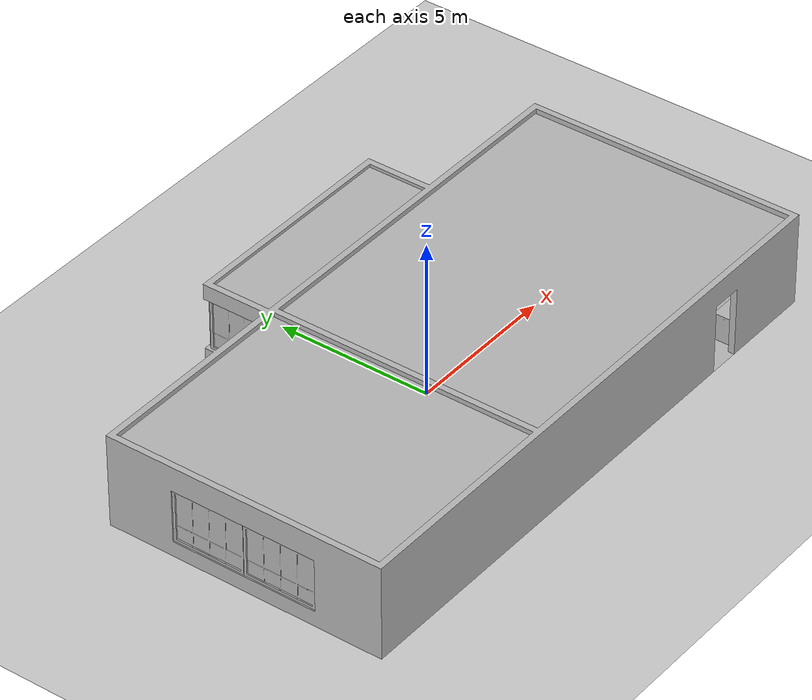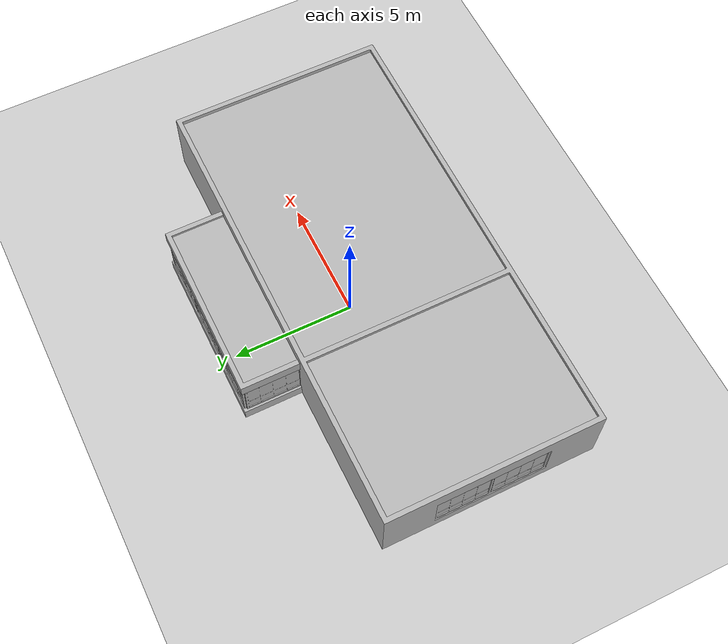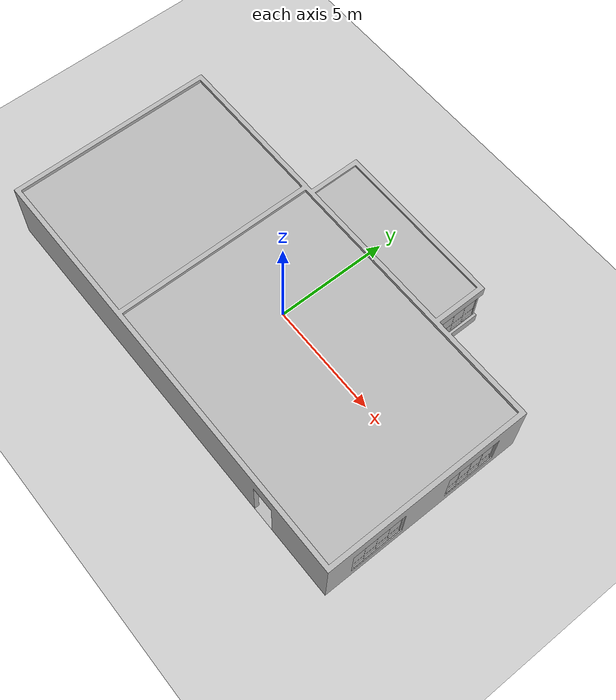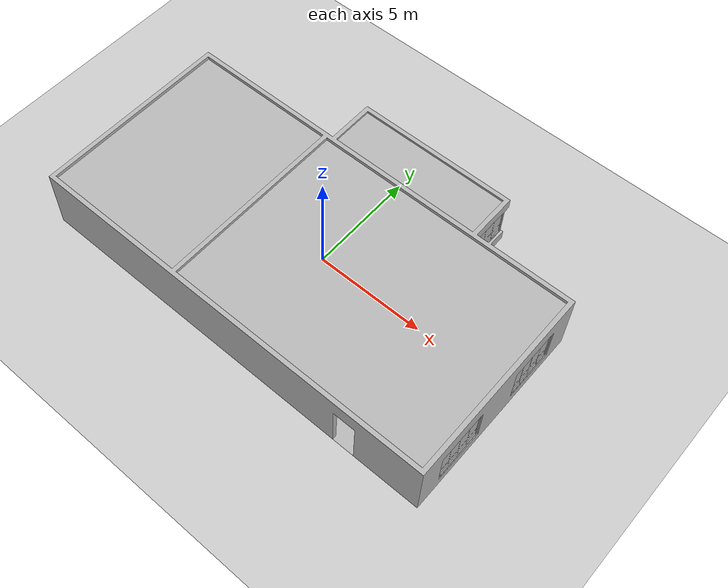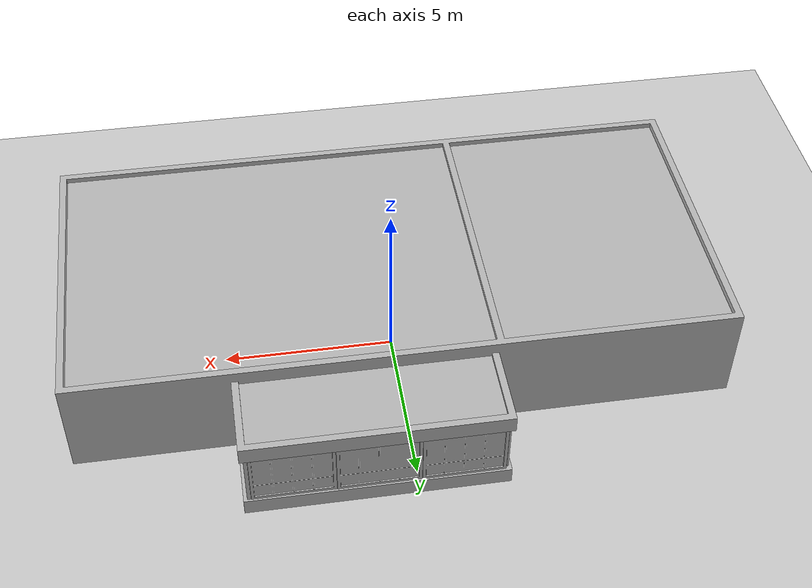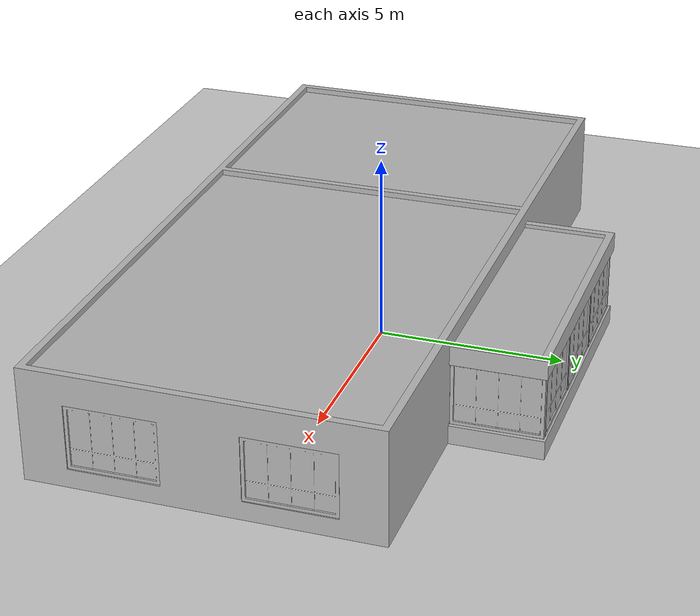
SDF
<sdf version="1.8">
 <world name="small_house">
  <scene><grid>false</grid></scene>
  <physics name="10ms" type="ignored">
   <max_step_size>0.01</max_step_size>
   <real_time_factor>1.0</real_time_factor>
   <dart><collision_detector>bullet</collision_detector></dart>
  </physics>
  <plugin filename="ignition-gazebo-physics-system" name="ignition::gazebo::systems::Physics"/>
  <plugin filename="ignition-gazebo-sensors-system" name="ignition::gazebo::systems::Sensors">
   <render_engine>ogre2</render_engine>
  </plugin>
  <plugin filename="ignition-gazebo-scene-broadcaster-system" name="ignition::gazebo::systems::SceneBroadcaster"/>
  <plugin filename="ignition-gazebo-user-commands-system" name="ignition::gazebo::systems::UserCommands"/>
  <plugin filename="libignition-gazebo-imu-system.so" name="ignition::gazebo::systems::Imu"/>
  <light name="sun" type="directional">
   <pose>0 0 10 0 0 0</pose>
   <diffuse>0.8 0.8 0.8 1</diffuse>
   <specular>0.2 0.2 0.2 1</specular>
   <attenuation>
    <range>1000</range>
    <constant>0.9</constant>
    <linear>0.01</linear>
    <quadratic>0.001</quadratic>
   </attenuation>
   <direction>-0.5 0.1 -0.9</direction>
  </light>
  <model name="ground_plane">
   <static>true</static>
   <link name="link">
    <collision name="collision">
     <geometry><plane><normal>0 0 1</normal><size>100 100</size></plane></geometry>
    </collision>
    <visual name="visual">
     <geometry><plane><normal>0 0 1</normal><size>100 100</size></plane></geometry>
     <material>
      <ambient>0.8 0.8 0.8 1</ambient>
      <diffuse>0.8 0.8 0.8 1</diffuse>
      <specular>0.8 0.8 0.8 1</specular>
     </material>
    </visual>
   </link>
  </model>
  <include>
   <name>AirconditionerA_01_001</name>
   <uri>file://aws_small_house/models/aws_robomaker_residential_AirconditionerA_01</uri>
   <pose>-9.199410 2.411230 2.084544 0 -0 0</pose>
   <static>true</static>
  </include>
  <include>
   <name>AirconditionerB_01_001</name>
   <uri>file://aws_small_house/models/aws_robomaker_residential_AirconditionerB_01</uri>
   <pose>-2.004656 -5.226610 0.003485 0 -0 0</pose>
   <static>true</static>
  </include>
  <include>
   <name>Ball_01_001</name>
   <uri>file://aws_small_house/models/aws_robomaker_residential_Ball_01</uri>
   <pose>3.295503 4.225674 0.318684 0 -0 0</pose>
   <static>true</static>
  </include>
  <include>
   <name>Ball_01_002</name>
   <uri>file://aws_small_house/models/aws_robomaker_residential_Ball_01</uri>
   <pose>-3.665503 -0.4874 0.318684 0 -0 0</pose>
   <static>true</static>
  </include>
  <include>
   <name>Ball_01_003</name>
   <uri>file://aws_small_house/models/aws_robomaker_residential_Ball_01</uri>
   <pose>-6.945503 -4.22174 0.318684 0 -0 0</pose>
   <static>true</static>
  </include>
  <include>
   <name>NightStand_01_001</name>
   <uri>file://aws_small_house/models/aws_robomaker_residential_NightStand_01</uri>
   <pose>-7.725510 2.860420 0.005258 -0.000002 0 0</pose>
   <static>true</static>
  </include>
  <include>
   <name>NightStand_01_002</name>
   <uri>file://aws_small_house/models/aws_robomaker_residential_NightStand_01</uri>
   <pose>-4.407341 2.860420 0.005256 0 0.000002 0</pose>
   <static>true</static>
  </include>
  <include>
   <name>Board_01_001</name>
   <uri>file://aws_small_house/models/aws_robomaker_residential_Board_01</uri>
   <pose>2.779073 -5.392703 1.538173 0 -0 0</pose>
   <static>true</static>
  </include>
  <include>
   <name>RoomCeiling_01_001</name>
   <uri>file://aws_small_house/models/aws_robomaker_residential_RoomCeiling_01</uri>
   <pose>0 0 2.5 0 -0 0</pose>
   <static>true</static>
  </include>
  <include>
   <name>ChairD_01_001</name>
   <uri>file://aws_small_house/models/aws_robomaker_residential_ChairD_01</uri>
   <pose>-1.380775 4.104456 0 0 -0 0</pose>
   <static>true</static>
  </include>
  <include>
   <name>ChairD_01_002</name>
   <uri>file://aws_small_house/models/aws_robomaker_residential_ChairD_01</uri>
   <pose>0.325214 4.104456 0 0 -0 -3.138741</pose>
   <static>true</static>
  </include>
  <include>
   <name>ChairD_01_003</name>
   <uri>file://aws_small_house/models/aws_robomaker_residential_ChairD_01</uri>
   <pose>-8.270775 -4.504456 0 0 -0 0.869673</pose>
   <static>true</static>
  </include>
  <include>
   <name>Chandelier_01_001</name>
   <uri>file://aws_small_house/models/aws_robomaker_residential_Chandelier_01</uri>
   <pose>1.221061 4.155740 1.295000 0 -0 0</pose>
   <static>true</static>
  </include>
  <include>
   <name>Chandelier_01_002</name>
   <uri>file://aws_small_house/models/aws_robomaker_residential_Chandelier_01</uri>
   <pose>-6.451061 -0.692040 1.810000 0 -0 0</pose>
   <static>true</static>
  </include>
  <include>
   <name>Chandelier_01_003</name>
   <uri>file://aws_small_house/models/aws_robomaker_residential_Chandelier_01</uri>
   <pose>7.824061 -1.59 1.7510000 0 -0 0</pose>
   <static>true</static>
  </include>
  <include>
   <name>Chandelier_01_004</name>
   <uri>file://aws_small_house/models/aws_robomaker_residential_Chandelier_01</uri>
   <pose>1.221061 -1.592040 1.7873000 0 -0 0</pose>
   <static>true</static>
  </include>
  <include>
   <name>Carpet_01_001</name>
   <uri>file://aws_small_house/models/aws_robomaker_residential_Carpet_01</uri>
   <pose>0.785050 -1.106647 0.001106 0 -0 0</pose>
   <static>true</static>
  </include>
  <include>
   <name>Carpet_01_002</name>
   <uri>file://aws_small_house/models/aws_robomaker_residential_Carpet_01</uri>
   <pose>2.854050 3.45 0.000585 0 -0 0</pose>
   <static>true</static>
  </include>
  <include>
   <name>SecurityCamera_01_001</name>
   <uri>file://aws_small_house/models/aws_robomaker_residential_SecurityCamera_01</uri>
   <pose>0.842134 -4.996294 0.495067 0 -0 -2.841039</pose>
   <static>true</static>
  </include>
  <include>
   <name>CoffeeTable_01_001</name>
   <uri>file://aws_small_house/models/aws_robomaker_residential_CoffeeTable_01</uri>
   <pose>1.512301 -1.733438 0.041983 0.000000 0.000000 0.01000</pose>
   <static>true</static>
  </include>
  <include>
   <name>FitnessEquipment_01_001</name>
   <uri>file://aws_small_house/models/aws_robomaker_residential_FitnessEquipment_01</uri>
   <pose>3.484720 3.169104 0.003168 0 -0 0</pose>
   <static>true</static>
  </include>
  <include>
   <name>FoldingDoor_01_001</name>
   <uri>file://aws_small_house/models/aws_robomaker_residential_FoldingDoor_01</uri>
   <pose>-2.461096 1.844219 0.041881 0 -0 0</pose>
   <static>true</static>
  </include>
  <include>
   <name>FoldingDoor_01_002</name>
   <uri>file://aws_small_house/models/aws_robomaker_residential_FoldingDoor_01</uri>
   <pose>-2.461096 -4.053320 0.041881 0 -0 0</pose>
   <static>true</static>
  </include>
  <include>
   <name>HouseWallB_01_001</name>
   <uri>file://aws_small_house/models/aws_robomaker_residential_HouseWallB_01</uri>
   <static>true</static>
  </include>
  <include>
   <name>FloorB_01_001</name>
   <uri>file://aws_small_house/models/aws_robomaker_residential_FloorB_01</uri>
   <static>true</static>
  </include>
  <include>
   <name>FoldingDoor_02_001</name>
   <uri>file://aws_small_house/models/aws_robomaker_residential_FoldingDoor_02</uri>
   <pose>4.674231 2.46451 0 0 -0 3.14159</pose>
   <static>true</static>
  </include>
  <include>
   <name>FoldingDoor_02_002</name>
   <uri>file://aws_small_house/models/aws_robomaker_residential_FoldingDoor_02</uri>
   <pose>4.8912 -4.84968 0 0 -0 0</pose>
   <static>true</static>
  </include>
  <include>
   <name>KitchenCabinet_01_001</name>
   <uri>file://aws_small_house/models/aws_robomaker_residential_KitchenCabinet_01</uri>
   <pose>8.002009 -3.836509 0.012068 0 -0 -3.140001</pose>
   <static>true</static>
  </include>
  <include>
   <name>LightC_01_001</name>
   <uri>file://aws_small_house/models/aws_robomaker_residential_LightC_01</uri>
   <pose>1.769567 -5.4443710 2.000000 0 -0 0</pose>
   <static>true</static>
  </include>
  <include>
   <name>LightC_01_002</name>
   <uri>file://aws_small_house/models/aws_robomaker_residential_LightC_01</uri>
   <pose>-0.138245 -5.4443710 2.000000 0 -0 0</pose>
   <static>true</static>
  </include>
  <include>
   <name>PortraitA_01</name>
   <uri>file://aws_small_house/models/aws_robomaker_residential_PortraitA_01</uri>
   <pose>-2.712360 -4.817539 1.00000 0 -0 1.566796</pose>
   <static>true</static>
  </include>
  <include>
   <name>PortraitB_01</name>
   <uri>file://aws_small_house/models/aws_robomaker_residential_PortraitB_01</uri>
   <pose>-1.279683 -5.429630 0.0 -0.076901 0 -3.116718</pose>
   <static>true</static>
  </include>
  <include>
   <name>PortraitB_02</name>
   <uri>file://aws_small_house/models/aws_robomaker_residential_PortraitB_02</uri>
   <pose>5.737017 3.080310 0.300000 0 -0 0</pose>
   <static>true</static>
  </include>
  <include>
   <name>PortraitB_03</name>
   <uri>file://aws_small_house/models/aws_robomaker_residential_PortraitB_03</uri>
   <pose>3.071380 -5.349366 0.005494 -0.168428 0.0 3.104232</pose>
   <static>true</static>
  </include>
  <include>
   <name>PortraitA_02</name>
   <uri>file://aws_small_house/models/aws_robomaker_residential_PortraitA_02</uri>
   <pose>7.937017 3.080310 0.300000 0 -0 3.14</pose>
   <static>true</static>
  </include>
  <include>
   <name>PortraitC_01</name>
   <uri>file://aws_small_house/models/aws_robomaker_residential_PortraitC_01</uri>
   <pose>-9.294904 -4.526084 1.000000 0 -0 1.554734</pose>
   <static>true</static>
  </include>
  <include>
   <name>PortraitD_01</name>
   <uri>file://aws_small_house/models/aws_robomaker_residential_PortraitD_01</uri>
   <pose>0.789763 -5.478725 1.800000 0 -0 3.138531</pose>
   <static>true</static>
  </include>
  <include>
   <name>PortraitD_02</name>
   <uri>file://aws_small_house/models/aws_robomaker_residential_PortraitD_02</uri>
   <pose>6.870181 3.080310 1.488439 0 -0 0</pose>
   <static>true</static>
  </include>
  <include>
   <name>PortraitE_01</name>
   <uri>file://aws_small_house/models/aws_robomaker_residential_PortraitE_01</uri>
   <pose>-5.773094 -5.492466 1.000000 0 -0 3.132627</pose>
   <static>true</static>
  </include>
  <include>
   <name>PortraitE_02</name>
   <uri>file://aws_small_house/models/aws_robomaker_residential_PortraitE_02</uri>
   <pose>-6.193025 -1.590208 0.3 0 -0 0.004290</pose>
   <static>true</static>
  </include>
  <include>
   <name>DeskPortraitA_01</name>
   <uri>file://aws_small_house/models/aws_robomaker_residential_DeskPortraitA_01</uri>
   <pose>-0.036864 -5.110156 0.498660 0 -0 2.927784</pose>
   <static>true</static>
  </include>
  <include>
   <name>DeskPortraitA_02</name>
   <uri>file://aws_small_house/models/aws_robomaker_residential_DeskPortraitA_02</uri>
   <pose>2.046082 -1.892926 0.0703880 -0.018328 -0.000441 1.576216</pose>
   <static>true</static>
  </include>
  <include>
   <name>DeskPortraitD_01</name>
   <uri>file://aws_small_house/models/aws_robomaker_residential_DeskPortraitD_01</uri>
   <pose>2.645560 -5.376225 1.573738 0 -0 -3.112826</pose>
   <static>true</static>
  </include>
  <include>
   <name>DeskPortraitD_02</name>
   <uri>file://aws_small_house/models/aws_robomaker_residential_DeskPortraitD_02</uri>
   <pose>-0.589211 -5.109890 0.192145 -0.000015 -0.000174 -3.112544</pose>
   <static>true</static>
  </include>
  <include>
   <name>DeskPortraitD_03</name>
   <uri>file://aws_small_house/models/aws_robomaker_residential_DeskPortraitD_03</uri>
   <pose>1.826729 -1.464881 0.126208 0.000010 0.000006 -3.114380</pose>
   <static>true</static>
  </include>
  <include>
   <name>DeskPortraitD_04</name>
   <uri>file://aws_small_house/models/aws_robomaker_residential_DeskPortraitD_04</uri>
   <pose>4.302132 -5.176568 0.202496 0.007118 -0.000001 3.046683</pose>
   <static>true</static>
  </include>
  <include>
   <name>DeskPortraitB_01</name>
   <uri>file://aws_small_house/models/aws_robomaker_residential_DeskPortraitB_01</uri>
   <pose>3.547 -5.087950 0.202496 0.007118 -0.000001 3.046683</pose>
   <static>true</static>
  </include>
  <include>
   <name>DeskPortraitB_02</name>
   <uri>file://aws_small_house/models/aws_robomaker_residential_DeskPortraitB_02</uri>
   <pose>2.486082 -5.104568 0.202496 0.007118 -0.000001 3.046683</pose>
   <static>true</static>
  </include>
  <include>
   <name>Rangehood_01_001</name>
   <uri>file://aws_small_house/models/aws_robomaker_residential_Rangehood_01</uri>
   <pose>9.019794 -3.369940 1.507605 0 -0 0</pose>
   <static>true</static>
  </include>
  <include>
   <name>Refrigerator_01_001</name>
   <uri>file://aws_small_house/models/aws_robomaker_residential_Refrigerator_01</uri>
   <pose>8.702731 -1.032031 0 0 -0 -1.563499</pose>
   <static>true</static>
  </include>
  <include>
   <name>ShoeRack_01_001</name>
   <uri>file://aws_small_house/models/aws_robomaker_residential_ShoeRack_01</uri>
   <pose>4.297978 -5.173566 0 0 -0 0</pose>
   <static>true</static>
  </include>
  <include>
   <name>RoomWall_01_001</name>
   <uri>file://aws_small_house/models/aws_robomaker_residential_RoomWall_01</uri>
   <pose>-6.097550 -1.496180 0.028124 0 -0 0</pose>
   <static>true</static>
  </include>
  <include>
   <name>RoomWindow_01_001</name>
   <uri>file://aws_small_house/models/aws_robomaker_residential_RoomWindow_01</uri>
   <pose>-9.418600 -0.026285 0.502739 0 -0 0</pose>
   <static>true</static>
  </include>
  <include>
   <name>RoomWindow_01_002</name>
   <uri>file://aws_small_house/models/aws_robomaker_residential_RoomWindow_01</uri>
   <pose>-9.418600 -2.374090 0.502739 0 -0 0</pose>
   <static>true</static>
  </include>
  <include>
   <name>RoomWindow_01_003</name>
   <uri>file://aws_small_house/models/aws_robomaker_residential_RoomWindow_01</uri>
   <pose>9.422616 -3.373981 0.502739 0 -0 -3.136099</pose>
   <static>true</static>
  </include>
  <include>
   <name>RoomWindow_01_004</name>
   <uri>file://aws_small_house/models/aws_robomaker_residential_RoomWindow_01</uri>
   <pose>9.422558 0.968520 0.496581 0 -0 -3.136099</pose>
   <static>true</static>
  </include>
  <include>
   <name>RoomWindow_01_005</name>
   <uri>file://aws_small_house/models/aws_robomaker_residential_RoomWindow_01</uri>
   <pose>4.722317 4.470281 0.502739 0 -0 -3.136099</pose>
   <static>true</static>
  </include>
  <include>
   <name>RoomWindow_01_006</name>
   <uri>file://aws_small_house/models/aws_robomaker_residential_RoomWindow_01</uri>
   <pose>3.488520 5.600688 0.502739 0 -0 -1.566274</pose>
   <static>true</static>
  </include>
  <include>
   <name>RoomWindow_01_007</name>
   <uri>file://aws_small_house/models/aws_robomaker_residential_RoomWindow_01</uri>
   <pose>1.140949 5.600688 0.502739 0 -0 -1.566274</pose>
   <static>true</static>
  </include>
  <include>
   <name>RoomWindow_01_008</name>
   <uri>file://aws_small_house/models/aws_robomaker_residential_RoomWindow_01</uri>
   <pose>-1.199340 5.600688 0.502739 0 -0 -1.566274</pose>
   <static>true</static>
  </include>
  <include>
   <name>RoomWindow_01_009</name>
   <uri>file://aws_small_house/models/aws_robomaker_residential_RoomWindow_01</uri>
   <pose>-2.396624 4.387607 0.502739 0 -0 0</pose>
   <static>true</static>
  </include>
 </world>
</sdf>

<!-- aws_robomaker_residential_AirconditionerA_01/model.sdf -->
<sdf version="1.8">
  <model name="aws_robomaker_residential_AirconditionerA_01">
    <link name="link">
      <collision name="collision">
        <geometry>
          <mesh>
            <uri>file://aws_small_house/models/aws_robomaker_residential_AirconditionerA_01/meshes/aws_AirconditionerA_01_collision.DAE</uri>
            <scale>1 1 1</scale>
          </mesh>
        </geometry>
      </collision>
      <visual name="visual">
	    <geometry>
          <mesh>
            <uri>file://aws_small_house/models/aws_robomaker_residential_AirconditionerA_01/meshes/aws_AirconditionerA_01_visual.DAE</uri>
          </mesh>
        </geometry>
      <meta> <layer> 1 </layer></meta>
</visual>
    </link>
	<static>1</static>
  </model>
</sdf>

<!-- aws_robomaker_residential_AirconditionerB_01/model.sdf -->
<sdf version="1.8">
  <model name="aws_robomaker_residential_AirconditionerB_01">
    <link name="link">
      <collision name="collision">
        <geometry>
          <mesh>
            <uri>file://aws_small_house/models/aws_robomaker_residential_AirconditionerB_01/meshes/aws_AirconditionerB_01_collision.DAE</uri>
            <scale>1 1 1</scale>
          </mesh>
        </geometry>
      </collision>
      <visual name="visual">
	    <geometry>
          <mesh>
            <uri>file://aws_small_house/models/aws_robomaker_residential_AirconditionerB_01/meshes/aws_AirconditionerB_01_visual.DAE</uri>
          </mesh>
        </geometry>
      <meta> <layer> 1 </layer></meta>
</visual>
    </link>
  </model>
</sdf>

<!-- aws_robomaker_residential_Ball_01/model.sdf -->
<sdf version="1.8">
  <model name="aws_robomaker_residential_Ball_01">
    <link name="link">
      <collision name="collision">

        <geometry>
          <sphere>
            <radius>0.31 </radius>
          </sphere>

        </geometry>

        <surface>
          <friction>
            <ode>
              <mu>0.85</mu>
              <mu2>0.85</mu2>
            </ode>
          </friction>

        <!-- Add some bounciness to the ball -->
          <contact>
            <ode>
              <kd>8500</kd>
              <max_vel>5.1</max_vel>
            </ode>
          </contact>
        </surface>

      </collision>
      <visual name="visual">
	    <geometry>
          <sphere>
            <radius>0.31 </radius>
          </sphere>
      </geometry>
          <material>
            <diffuse>0.12 0.76 0.97 1</diffuse>
            <ambient>0.03 0.21 0.27 1</ambient>
          </material>
      <meta> <layer> 1 </layer></meta>
</visual>
    </link>
  </model>
</sdf>

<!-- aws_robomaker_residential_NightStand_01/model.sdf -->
<sdf version="1.8">
  <model name="aws_robomaker_residential_NightStand_01">
    <link name="link">
      <collision name="collision">
        <geometry>
          <mesh>
            <uri>file://aws_small_house/models/aws_robomaker_residential_NightStand_01/meshes/aws_NightStand_01_collision.DAE</uri>
            <scale>1 1 1</scale>
          </mesh>
        </geometry>
      </collision>
      <visual name="visual">
	    <geometry>
          <mesh>
            <uri>file://aws_small_house/models/aws_robomaker_residential_NightStand_01/meshes/aws_NightStand_01_visual.DAE</uri>
          </mesh>
        </geometry>
      <meta> <layer> 1 </layer></meta>
</visual>
    </link>
    <static>1</static>
  </model>
</sdf>

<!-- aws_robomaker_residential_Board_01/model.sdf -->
<sdf version="1.8">
  <model name="aws_robomaker_residential_Board_01">
    <link name="link">
      <collision name="collision">
        <geometry>
          <mesh>
            <uri>file://aws_small_house/models/aws_robomaker_residential_Board_01/meshes/aws_Board_01_collision.DAE</uri>
            <scale>1 1 1</scale>
          </mesh>
        </geometry>
      </collision>
      <visual name="visual">
	    <geometry>
          <mesh>
            <uri>file://aws_small_house/models/aws_robomaker_residential_Board_01/meshes/aws_Board_01_visual.DAE</uri>
          </mesh>
        </geometry>
      <meta> <layer> 2 </layer></meta>
</visual>
    </link>

    <static>1</static>
  </model>
</sdf>

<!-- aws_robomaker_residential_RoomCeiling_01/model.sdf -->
<sdf version="1.8">
  <model name="aws_robomaker_residential_RoomCeiling_01">
    <link name="link">
      <collision name="collision">
        <geometry>
          <mesh>
            <uri>file://aws_small_house/models/aws_robomaker_residential_RoomCeiling_01/meshes/aws_RoomCeiling_01_collision.DAE</uri>
            <scale>1 1 1</scale>
          </mesh>
        </geometry>
      </collision>
      <visual name="visual">
	    <geometry>
          <mesh>
            <uri>file://aws_small_house/models/aws_robomaker_residential_RoomCeiling_01/meshes/aws_RoomCeiling_01_visual.DAE</uri>
          </mesh>
        </geometry>

	<meta>
	    <layer> 3 </layer>
	</meta>
      </visual>
    </link>
    <static>1</static>

  </model>
</sdf>

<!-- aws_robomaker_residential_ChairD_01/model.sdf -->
<sdf version="1.8">
  <model name="aws_robomaker_residential_ChairD_01">
    <link name="link">

      <collision name="collision">

        <geometry>
          <mesh>
            <uri>file://aws_small_house/models/aws_robomaker_residential_ChairD_01/meshes/aws_ChairD_01_collision.DAE</uri>
            <scale>1 1 1</scale>
          </mesh>
        </geometry>

      </collision>
      <visual name="visual">
	    <geometry>
          <mesh>
            <uri>file://aws_small_house/models/aws_robomaker_residential_ChairD_01/meshes/aws_ChairD_01_visual.DAE</uri>
          </mesh>
        </geometry>
      <meta> <layer> 1 </layer></meta>
</visual>
    </link>
  </model>
</sdf>

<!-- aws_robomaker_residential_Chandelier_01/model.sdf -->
<sdf version="1.8">
  <model name="aws_robomaker_residential_Chandelier_01">
    <link name="link">
      <collision name="collision">
        <geometry>
          <mesh>
            <uri>file://aws_small_house/models/aws_robomaker_residential_Chandelier_01/meshes/aws_Chandelier_01_collision.DAE</uri>
            <scale>1 1 1</scale>
          </mesh>
        </geometry>
      </collision>
      <visual name="visual">
	    <geometry>
          <mesh>
            <uri>file://aws_small_house/models/aws_robomaker_residential_Chandelier_01/meshes/aws_Chandelier_01_visual.DAE</uri>
          </mesh>
        </geometry>
      <meta> <layer> 2 </layer></meta>
</visual>
    </link>
	<static>1</static>
  </model>
</sdf>

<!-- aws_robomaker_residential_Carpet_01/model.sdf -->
<sdf version="1.8">
  <model name="aws_robomaker_residential_Carpet_01">
    <link name="link">

      <collision name="collision">

        <geometry>
          <mesh>
            <uri>file://aws_small_house/models/aws_robomaker_residential_Carpet_01/meshes/aws_Carpet_01_collision.DAE</uri>
            <scale>1 1 0.95</scale>
          </mesh>
        </geometry>

        <surface>
          <contact>
            <ode>
            </ode>
          </contact>
        </surface>

        <pose>0 0 -0.01 0 0 0 </pose>
      </collision>

      <visual name="visual">
	    <geometry>
          <mesh>
            <uri>file://aws_small_house/models/aws_robomaker_residential_Carpet_01/meshes/aws_Carpet_01_visual.DAE</uri>
          </mesh>
        </geometry>
      <meta> <layer> 1 </layer></meta>
</visual>
    </link>

    <static>1</static>

  </model>
</sdf>

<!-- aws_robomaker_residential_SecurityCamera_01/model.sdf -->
<sdf version="1.8">
  <model name="aws_robomaker_residential_SecurityCamera_01">
    <link name="link">
      <collision name="collision">
        <geometry>
          <mesh>
            <uri>file://aws_small_house/models/aws_robomaker_residential_SecurityCamera_01/meshes/aws_SecurityCamera_01_collision.DAE</uri>
            <scale>1 1 1</scale>
          </mesh>
        </geometry>
      </collision>
      <visual name="visual">
	    <geometry>
          <mesh>
            <uri>file://aws_small_house/models/aws_robomaker_residential_SecurityCamera_01/meshes/aws_SecurityCamera_01_visual.DAE</uri>
          </mesh>
        </geometry>
        <meta>
          <layer>2</layer>
        </meta>
      </visual>
    </link>
  </model>
</sdf>

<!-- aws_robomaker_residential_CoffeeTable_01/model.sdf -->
<sdf version="1.8">
  <model name="aws_robomaker_residential_CoffeeTable_01">
    <link name="link">

      <collision name="collision">
        <geometry>
          <mesh>
            <uri>file://aws_small_house/models/aws_robomaker_residential_CoffeeTable_01/meshes/aws_CoffeeTable_01_collision.DAE</uri>
            <scale>1 1 1</scale>
          </mesh>
        </geometry>

        <surface>
          <contact>
            <ode>
              <max_vel>0.01</max_vel>
            </ode>
          </contact>
         </surface>
      </collision>

      <visual name="visual">
	    <geometry>
          <mesh>
            <uri>file://aws_small_house/models/aws_robomaker_residential_CoffeeTable_01/meshes/aws_CoffeeTable_01_visual.DAE</uri>
          </mesh>
        </geometry>
      <meta> <layer> 1 </layer></meta>
</visual>
    </link>
    <static>1</static>
  </model>
</sdf>

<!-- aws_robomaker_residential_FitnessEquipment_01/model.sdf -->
<sdf version="1.8">
  <model name="aws_robomaker_residential_FitnessEquipment_01">
    <link name="link">
      <collision name="collision">
        <geometry>
          <mesh>
            <uri>file://aws_small_house/models/aws_robomaker_residential_FitnessEquipment_01/meshes/aws_FitnessEquipment_01_collision.DAE</uri>
            <scale>1 1 1</scale>
          </mesh>
        </geometry>
      </collision>
      <visual name="visual">
	    <geometry>
          <mesh>
            <uri>file://aws_small_house/models/aws_robomaker_residential_FitnessEquipment_01/meshes/aws_FitnessEquipment_01_visual.DAE</uri>
          </mesh>
        </geometry>
      <meta> <layer> 1 </layer></meta>
</visual>
    </link>
  <static>1</static>
  </model>
</sdf>

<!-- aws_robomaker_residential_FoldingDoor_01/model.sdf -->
<sdf version="1.8">
  <model name="aws_robomaker_residential_FoldingDoor_01">
    <link name="link">
      <collision name="collision">
        <geometry>
          <mesh>
            <uri>file://aws_small_house/models/aws_robomaker_residential_FoldingDoor_01/meshes/aws_FoldingDoor_01_collision.DAE</uri>
            <scale>1 1 1</scale>
          </mesh>
        </geometry>
      </collision>
      <visual name="visual">
	    <geometry>
          <mesh>
            <uri>file://aws_small_house/models/aws_robomaker_residential_FoldingDoor_01/meshes/aws_FoldingDoor_01_visual.DAE</uri>
          </mesh>
        </geometry>
      <meta> <layer> 2 </layer></meta>
</visual>
    </link>
	<static>1</static>
  </model>
</sdf>

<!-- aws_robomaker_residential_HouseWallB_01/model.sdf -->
<sdf version="1.8">
  <model name="aws_robomaker_residential_HouseWallB_01">
    <link name="link">
      <collision name="collision">
        <geometry>
          <mesh>
            <uri>file://aws_small_house/models/aws_robomaker_residential_HouseWallB_01/meshes/aws_HouseWallB_01_collision.DAE</uri>
            <scale>1 1 1</scale>
          </mesh>
        </geometry>
      </collision>
      <visual name="visual">
	    <geometry>
          <mesh>
            <uri>file://aws_small_house/models/aws_robomaker_residential_HouseWallB_01/meshes/aws_HouseWallB_01_visual.DAE</uri>
          </mesh>
        </geometry>
      <meta> <layer> 2 </layer></meta>
</visual>
    </link>
<static>1</static>
  </model>
</sdf>

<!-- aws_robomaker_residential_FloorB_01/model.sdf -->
<sdf version="1.8">
  <model name="aws_robomaker_residential_FloorB_01">
    <link name="link">

      <collision name="collision">
        <geometry>
          <mesh>
            <uri>file://aws_small_house/models/aws_robomaker_residential_FloorB_01/meshes/aws_FloorB_01_collision.DAE</uri>
            <scale>1 1 0.9</scale>
          </mesh>
        </geometry>

        <surface>

        <!--
        src: https://www.engineeringtoolbox.com/friction-coefficients-d_778.html
        Wood (Clean & Dry Surfaces): 0.6
        -->
          <friction>
            <ode>
              <mu>0.6</mu>
              <mu2>0.6</mu2>
            </ode>
          </friction>

        </surface>

      </collision>

      <visual name="visual">
	    <geometry>
          <mesh>
            <uri>file://aws_small_house/models/aws_robomaker_residential_FloorB_01/meshes/aws_FloorB_01_visual.DAE</uri>
          </mesh>
        </geometry>
      <meta> <layer> 1 </layer></meta>
</visual>
    </link>

	<static>1</static>
  </model>
</sdf>

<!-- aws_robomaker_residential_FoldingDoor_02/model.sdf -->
<sdf version="1.8">
  <model name="aws_robomaker_residential_FoldingDoor_02">
    <link name="link">
      <collision name="collision">
        <geometry>
          <mesh>
            <uri>file://aws_small_house/models/aws_robomaker_residential_FoldingDoor_02/meshes/aws_FoldingDoor_02_collision.DAE</uri>
            <scale>1 1 1</scale>
          </mesh>
        </geometry>
      </collision>
      <visual name="visual">
	    <geometry>
          <mesh>
            <uri>file://aws_small_house/models/aws_robomaker_residential_FoldingDoor_02/meshes/aws_FoldingDoor_02_visual.DAE</uri>
          </mesh>
        </geometry>
      <meta> <layer> 2 </layer></meta>
</visual>
    </link>
<static>1</static>
  </model>
</sdf>

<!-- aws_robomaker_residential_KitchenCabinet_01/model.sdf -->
<sdf version="1.8">
  <model name="aws_robomaker_residential_KitchenCabinet_01">
    <link name="link">
      <collision name="collision">
        <laser_retro>0</laser_retro>
        <max_contacts>10</max_contacts>
        <geometry>
          <mesh>
            <uri>file://aws_small_house/models/aws_robomaker_residential_KitchenCabinet_01/meshes/aws_KitchenCabinet_01_collision.DAE</uri>
            <scale>1 1 1</scale>
          </mesh>
        </geometry>
      </collision>
      <visual name="visual">
	    <geometry>
          <mesh>
            <uri>file://aws_small_house/models/aws_robomaker_residential_KitchenCabinet_01/meshes/aws_KitchenCabinet_01_visual.DAE</uri>
          </mesh>
        </geometry>
      <meta> <layer> 1 </layer></meta>
</visual>
    </link>

    <static>1</static>
  </model>
</sdf>

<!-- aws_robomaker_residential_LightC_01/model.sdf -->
<sdf version="1.8">
  <model name="aws_robomaker_residential_LightC_01">
    <link name="link">
      <collision name="collision">
        <geometry>
          <mesh>
            <uri>file://aws_small_house/models/aws_robomaker_residential_LightC_01/meshes/aws_LightC_01_collision.DAE</uri>
            <scale>1 1 1</scale>
          </mesh>
        </geometry>
      </collision>
      <visual name="visual">
	    <geometry>
          <mesh>
            <uri>file://aws_small_house/models/aws_robomaker_residential_LightC_01/meshes/aws_LightC_01_visual.DAE</uri>
          </mesh>
        </geometry>
      <meta> <layer> 2 </layer></meta>
</visual>
    </link>
	<static>1</static>
  </model>
</sdf>

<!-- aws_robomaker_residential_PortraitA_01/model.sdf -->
<sdf version="1.8">
  <model name="aws_robomaker_residential_PortraitA_01">
    <link name="link">
      <collision name="collision">
        <geometry>
          <mesh>
            <uri>file://aws_small_house/models/aws_robomaker_residential_PortraitA_01/meshes/aws_PortraitA_01_collision.DAE</uri>
            <scale>1 1 1</scale>
          </mesh>
        </geometry>
      </collision>
      <visual name="visual">
	    <geometry>
          <mesh>
            <uri>file://aws_small_house/models/aws_robomaker_residential_PortraitA_01/meshes/aws_PortraitA_01_visual.DAE</uri>
          </mesh>
        </geometry>
      <meta> <layer> 2 </layer></meta>
</visual>
    </link>
	<static>1</static>
  </model>
</sdf>

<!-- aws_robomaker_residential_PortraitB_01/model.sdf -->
<sdf version="1.8">
  <model name="aws_robomaker_residential_PortraitB_01">
    <link name="link">
      <collision name="collision">
        <geometry>
          <mesh>
            <uri>file://aws_small_house/models/aws_robomaker_residential_PortraitB_01/meshes/aws_PortraitB_01_collision.DAE</uri>
            <scale>1 1 1</scale>
          </mesh>
        </geometry>
      </collision>
      <visual name="visual">
	    <geometry>
          <mesh>
            <uri>file://aws_small_house/models/aws_robomaker_residential_PortraitB_01/meshes/aws_PortraitB_01_visual.DAE</uri>
          </mesh>
        </geometry>
      <meta> <layer> 2 </layer></meta>
</visual>
    </link>
	<static>1</static>
  </model>
</sdf>

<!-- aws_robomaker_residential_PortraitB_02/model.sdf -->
<sdf version="1.8">
  <model name="aws_robomaker_residential_PortraitB_02">
    <link name="link">
      <collision name="collision">
        <geometry>
          <mesh>
            <uri>file://aws_small_house/models/aws_robomaker_residential_PortraitB_02/meshes/aws_PortraitB_01_collision.DAE</uri>
            <scale>1 1 1</scale>
          </mesh>
        </geometry>
      </collision>
      <visual name="visual">
	    <geometry>
          <mesh>
            <uri>file://aws_small_house/models/aws_robomaker_residential_PortraitB_02/meshes/aws_PortraitB_01_visual.DAE</uri>
          </mesh>
        </geometry>
      <meta> <layer> 2 </layer></meta>
</visual>
    </link>
	<static>1</static>
  </model>
</sdf>

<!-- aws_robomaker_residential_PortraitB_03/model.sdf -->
<sdf version="1.8">
  <model name="aws_robomaker_residential_PortraitB_03">
    <link name="link">
      <collision name="collision">
        <geometry>
          <mesh>
            <uri>file://aws_small_house/models/aws_robomaker_residential_PortraitB_03/meshes/aws_PortraitB_01_collision.DAE</uri>
            <scale>1 1 1</scale>
          </mesh>
        </geometry>
      </collision>
      <visual name="visual">
	    <geometry>
          <mesh>
            <uri>file://aws_small_house/models/aws_robomaker_residential_PortraitB_03/meshes/aws_PortraitB_01_visual.DAE</uri>
          </mesh>
        </geometry>
      <meta> <layer> 2 </layer></meta>
</visual>
    </link>
	<static>1</static>
  </model>
</sdf>

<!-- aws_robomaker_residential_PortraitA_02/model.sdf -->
<sdf version="1.8">
  <model name="aws_robomaker_residential_PortraitA_02">
    <link name="link">
      <collision name="collision">
        <geometry>
          <mesh>
            <uri>file://aws_small_house/models/aws_robomaker_residential_PortraitA_02/meshes/aws_PortraitA_01_collision.DAE</uri>
            <scale>1 1 1</scale>
          </mesh>
        </geometry>
      </collision>
      <visual name="visual">
	    <geometry>
          <mesh>
            <uri>file://aws_small_house/models/aws_robomaker_residential_PortraitA_02/meshes/aws_PortraitA_01_visual.DAE</uri>
          </mesh>
        </geometry>
      <meta> <layer> 2 </layer></meta>
</visual>
    </link>
	<static>1</static>
  </model>
</sdf>

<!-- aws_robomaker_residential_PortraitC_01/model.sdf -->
<sdf version="1.8">
  <model name="aws_robomaker_residential_PortraitC_01">
    <link name="link">
      <collision name="collision">
        <geometry>
          <mesh>
            <uri>file://aws_small_house/models/aws_robomaker_residential_PortraitC_01/meshes/aws_PortraitC_01_collision.DAE</uri>
            <scale>1 1 1</scale>
          </mesh>
        </geometry>
      </collision>
      <visual name="visual">
	    <geometry>
          <mesh>
            <uri>file://aws_small_house/models/aws_robomaker_residential_PortraitC_01/meshes/aws_PortraitC_01_visual.DAE</uri>
          </mesh>
        </geometry>
      <meta> <layer> 2 </layer></meta>
</visual>
    </link>
	<static>1</static>
  </model>
</sdf>

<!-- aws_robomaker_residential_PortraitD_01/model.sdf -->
<sdf version="1.8">
  <model name="aws_robomaker_residential_PortraitD_01">
    <link name="link">

      <collision name="collision">
        <geometry>
          <mesh>
            <uri>file://aws_small_house/models/aws_robomaker_residential_PortraitD_01/meshes/aws_PortraitD_01_collision.DAE</uri>
            <scale>1 1 1</scale>
          </mesh>
        </geometry>

      </collision>

      <visual name="visual">
	    <geometry>
          <mesh>
            <uri>file://aws_small_house/models/aws_robomaker_residential_PortraitD_01/meshes/aws_PortraitD_01_visual.DAE</uri>
          </mesh>
        </geometry>
      <meta> <layer> 2 </layer></meta>
</visual>
    </link>
	<static>1</static>
  </model>
</sdf>

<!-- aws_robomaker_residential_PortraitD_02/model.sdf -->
<sdf version="1.8">
  <model name="aws_robomaker_residential_PortraitD_02">
    <link name="link">

      <collision name="collision">
        <geometry>
          <mesh>
            <uri>file://aws_small_house/models/aws_robomaker_residential_PortraitD_02/meshes/aws_PortraitD_01_collision.DAE</uri>
            <scale>1 1 1</scale>
          </mesh>
        </geometry>

      </collision>

      <visual name="visual">
	    <geometry>
          <mesh>
            <uri>file://aws_small_house/models/aws_robomaker_residential_PortraitD_02/meshes/aws_PortraitD_01_visual.DAE</uri>
          </mesh>
        </geometry>
      <meta> <layer> 2 </layer></meta>
</visual>
    </link>
	<static>1</static>
  </model>
</sdf>

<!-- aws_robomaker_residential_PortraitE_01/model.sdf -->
<sdf version="1.8">
  <model name="aws_robomaker_residential_PortraitE_01">
    <link name="link">
      <collision name="collision">
        <geometry>
          <mesh>
            <uri>file://aws_small_house/models/aws_robomaker_residential_PortraitE_01/meshes/aws_PortraitE_01_collision.DAE</uri>
            <scale>1 1 1</scale>
          </mesh>
        </geometry>
      </collision>
      <visual name="visual">
	    <geometry>
          <mesh>
            <uri>file://aws_small_house/models/aws_robomaker_residential_PortraitE_01/meshes/aws_PortraitE_01_visual.DAE</uri>
          </mesh>
        </geometry>
      <meta> <layer> 2 </layer></meta>
</visual>
    </link>
	<static>1</static>
  </model>
</sdf>

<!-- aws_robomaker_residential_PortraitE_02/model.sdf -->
<sdf version="1.8">
  <model name="aws_robomaker_residential_PortraitE_02">
    <link name="link">
      <collision name="collision">
        <geometry>
          <mesh>
            <uri>file://aws_small_house/models/aws_robomaker_residential_PortraitE_02/meshes/aws_PortraitE_01_collision.DAE</uri>
            <scale>1 1 1</scale>
          </mesh>
        </geometry>
      </collision>
      <visual name="visual">
	    <geometry>
          <mesh>
            <uri>file://aws_small_house/models/aws_robomaker_residential_PortraitE_02/meshes/aws_PortraitE_01_visual.DAE</uri>
          </mesh>
        </geometry>
      <meta> <layer> 2 </layer></meta>
</visual>
    </link>
	<static>1</static>
  </model>
</sdf>

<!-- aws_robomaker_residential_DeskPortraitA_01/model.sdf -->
<sdf version="1.8">
  <model name="aws_robomaker_residential_DeskPortraitA_01">
    <link name="link">

      <collision name="collision">
        <geometry>
          <mesh>
            <uri>file://aws_small_house/models/aws_robomaker_residential_DeskPortraitA_01/meshes/aws_DeskPortraitA_01_collision.DAE</uri>
            <scale>1 1 1</scale>
          </mesh>
        </geometry>
      </collision>

      <visual name="visual">
	    <geometry>
          <mesh>
            <uri>file://aws_small_house/models/aws_robomaker_residential_DeskPortraitA_01/meshes/aws_DeskPortraitA_01_visual.DAE</uri>
          </mesh>
        </geometry>
      <meta> <layer> 1 </layer></meta>
</visual>
    </link>
  </model>
</sdf>

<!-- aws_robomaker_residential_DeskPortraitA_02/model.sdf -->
<sdf version="1.8">
  <model name="aws_robomaker_residential_DeskPortraitA_02">
    <link name="link">

      <collision name="collision">
        <geometry>
          <mesh>
            <uri>file://aws_small_house/models/aws_robomaker_residential_DeskPortraitA_02/meshes/aws_DeskPortraitA_01_collision.DAE</uri>
            <scale>1 1 1</scale>
          </mesh>
        </geometry>
      </collision>

      <visual name="visual">
	    <geometry>
          <mesh>
            <uri>file://aws_small_house/models/aws_robomaker_residential_DeskPortraitA_02/meshes/aws_DeskPortraitA_01_visual.DAE</uri>
          </mesh>
        </geometry>
      <meta> <layer> 1 </layer></meta>
</visual>
    </link>
  </model>
</sdf>

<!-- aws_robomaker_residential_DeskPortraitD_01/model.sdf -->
<sdf version="1.8">
  <model name="aws_robomaker_residential_DeskPortraitD_01">
    <link name="link">

      <collision name="collision">
        <geometry>
          <mesh>
            <uri>file://aws_small_house/models/aws_robomaker_residential_DeskPortraitD_01/meshes/aws_DeskPortraitD_01_collision.DAE</uri>
            <scale>1 1 1</scale>
          </mesh>
        </geometry>

        <surface>
          <friction>
            <ode>
              <mu>0.7</mu>
              <mu2>0.7</mu2>
            </ode>
          </friction>

          <contact>
            <ode>
              <kd>28500</kd>
            </ode>
          </contact>

        </surface>

      </collision>

      <visual name="visual">
	    <geometry>
          <mesh>
            <uri>file://aws_small_house/models/aws_robomaker_residential_DeskPortraitD_01/meshes/aws_DeskPortraitD_01_visual.DAE</uri>
          </mesh>
        </geometry>
      <meta> <layer> 1 </layer></meta>
</visual>
    </link>
  </model>
</sdf>

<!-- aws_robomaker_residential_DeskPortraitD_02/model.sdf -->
<sdf version="1.8">
  <model name="aws_robomaker_residential_DeskPortraitD_02">
    <link name="link">

      <collision name="collision">
        <geometry>
          <mesh>
            <uri>file://aws_small_house/models/aws_robomaker_residential_DeskPortraitD_02/meshes/aws_DeskPortraitD_01_collision.DAE</uri>
            <scale>1 1 1</scale>
          </mesh>
        </geometry>

        <surface>
          <friction>
            <ode>
              <mu>0.7</mu>
              <mu2>0.7</mu2>
            </ode>
          </friction>

          <contact>
            <ode>
              <kd>28500</kd>
            </ode>
          </contact>

        </surface>

      </collision>

      <visual name="visual">
	    <geometry>
          <mesh>
            <uri>file://aws_small_house/models/aws_robomaker_residential_DeskPortraitD_02/meshes/aws_DeskPortraitD_01_visual.DAE</uri>
          </mesh>
        </geometry>
      <meta> <layer> 1 </layer></meta>
</visual>
    </link>
  </model>
</sdf>

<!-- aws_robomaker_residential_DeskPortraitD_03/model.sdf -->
<sdf version="1.8">
  <model name="aws_robomaker_residential_DeskPortraitD_03">
    <link name="link">

      <collision name="collision">
        <geometry>
          <mesh>
            <uri>file://aws_small_house/models/aws_robomaker_residential_DeskPortraitD_03/meshes/aws_DeskPortraitD_01_collision.DAE</uri>
            <scale>1 1 1</scale>
          </mesh>
        </geometry>

        <surface>
          <friction>
            <ode>
              <mu>0.7</mu>
              <mu2>0.7</mu2>
            </ode>
          </friction>

          <contact>
            <ode>
              <kd>28500</kd>
            </ode>
          </contact>

        </surface>

      </collision>

      <visual name="visual">
	    <geometry>
          <mesh>
            <uri>file://aws_small_house/models/aws_robomaker_residential_DeskPortraitD_03/meshes/aws_DeskPortraitD_01_visual.DAE</uri>
          </mesh>
        </geometry>
      <meta> <layer> 1 </layer></meta>
</visual>
    </link>
  </model>
</sdf>

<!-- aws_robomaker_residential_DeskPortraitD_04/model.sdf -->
<sdf version="1.8">
  <model name="aws_robomaker_residential_DeskPortraitD_04">
    <link name="link">

      <collision name="collision">
        <geometry>
          <mesh>
            <uri>file://aws_small_house/models/aws_robomaker_residential_DeskPortraitD_04/meshes/aws_DeskPortraitD_01_collision.DAE</uri>
            <scale>1 1 1</scale>
          </mesh>
        </geometry>

        <surface>
          <friction>
            <ode>
              <mu>0.7</mu>
              <mu2>0.7</mu2>
            </ode>
          </friction>

          <contact>
            <ode>
              <kd>28500</kd>
            </ode>
          </contact>

        </surface>

      </collision>

      <visual name="visual">
	    <geometry>
          <mesh>
            <uri>file://aws_small_house/models/aws_robomaker_residential_DeskPortraitD_04/meshes/aws_DeskPortraitD_01_visual.DAE</uri>
          </mesh>
        </geometry>
      <meta> <layer> 1 </layer></meta>
</visual>
    </link>
  </model>
</sdf>

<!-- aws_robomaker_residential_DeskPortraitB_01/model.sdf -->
<sdf version="1.8">
  <model name="aws_robomaker_residential_DeskPortraitB_01">
    <link name="link">

      <collision name="collision">
        <geometry>
          <mesh>
            <uri>file://aws_small_house/models/aws_robomaker_residential_DeskPortraitB_01/meshes/aws_DeskPortraitB_01_collision.DAE</uri>
            <scale>1 1 1</scale>
          </mesh>
        </geometry>
      </collision>

      <visual name="visual">
	    <geometry>
          <mesh>
            <uri>file://aws_small_house/models/aws_robomaker_residential_DeskPortraitB_01/meshes/aws_DeskPortraitB_01_visual.DAE</uri>
          </mesh>
        </geometry>
      <meta> <layer> 1 </layer></meta>
</visual>
    </link>
  </model>
</sdf>

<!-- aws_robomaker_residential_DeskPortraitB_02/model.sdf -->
<sdf version="1.8">
  <model name="aws_robomaker_residential_DeskPortraitB_02">
    <link name="link">

      <collision name="collision">
        <geometry>
          <mesh>
            <uri>file://aws_small_house/models/aws_robomaker_residential_DeskPortraitB_02/meshes/aws_DeskPortraitB_01_collision.DAE</uri>
            <scale>1 1 1</scale>
          </mesh>
        </geometry>
      </collision>

      <visual name="visual">
	    <geometry>
          <mesh>
            <uri>file://aws_small_house/models/aws_robomaker_residential_DeskPortraitB_02/meshes/aws_DeskPortraitB_01_visual.DAE</uri>
          </mesh>
        </geometry>
      <meta> <layer> 1 </layer></meta>
</visual>
    </link>
  </model>
</sdf>

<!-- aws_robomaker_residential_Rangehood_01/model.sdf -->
<sdf version="1.8">
  <model name="aws_robomaker_residential_Rangehood_01">
    <link name="link">
      <collision name="collision">
        <geometry>
          <mesh>
            <uri>file://aws_small_house/models/aws_robomaker_residential_Rangehood_01/meshes/aws_Rangehood_01_collision.DAE</uri>
            <scale>1 1 1</scale>
          </mesh>
        </geometry>
      </collision>
      <visual name="visual">
	    <geometry>
          <mesh>
            <uri>file://aws_small_house/models/aws_robomaker_residential_Rangehood_01/meshes/aws_Rangehood_01_visual.DAE</uri>
          </mesh>
        </geometry>
      <meta> <layer> 2 </layer></meta>
</visual>
    </link>
	<static>1</static>
  </model>
</sdf>

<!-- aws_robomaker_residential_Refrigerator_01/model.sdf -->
<sdf version="1.8">
  <model name="aws_robomaker_residential_Refrigerator_01">
    <link name="link">
      <collision name="collision">
        <geometry>
          <mesh>
            <uri>file://aws_small_house/models/aws_robomaker_residential_Refrigerator_01/meshes/aws_Refrigerator_01_collision.DAE</uri>
            <scale>1 1 1</scale>
          </mesh>
        </geometry>
      </collision>
      <visual name="visual">
	    <geometry>
          <mesh>
            <uri>file://aws_small_house/models/aws_robomaker_residential_Refrigerator_01/meshes/aws_Refrigerator_01_visual.DAE</uri>
          </mesh>
        </geometry>
      <meta> <layer> 1 </layer></meta>
</visual>
    </link>
    <static>1</static>
  </model>
</sdf>

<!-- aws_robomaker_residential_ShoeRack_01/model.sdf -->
<sdf version="1.8">
  <model name="aws_robomaker_residential_ShoeRack_01">
    <link name="link">

      <collision name="collision">

        <geometry>
          <mesh>
            <uri>file://aws_small_house/models/aws_robomaker_residential_ShoeRack_01/meshes/aws_ShoeRack_01_collision.DAE</uri>
            <scale>1 1 1</scale>
          </mesh>
        </geometry>

        <surface>
          <friction>
            <ode>
              <mu>0.2</mu>
              <mu2>0.2</mu2>
            </ode>
          </friction>

          <contact>
            <ode>
              <kd>2500</kd>
            </ode>
          </contact>

        </surface>

      </collision>

      <visual name="visual">
	    <geometry>
          <mesh>
            <uri>file://aws_small_house/models/aws_robomaker_residential_ShoeRack_01/meshes/aws_ShoeRack_01_visual.DAE</uri>
          </mesh>
        </geometry>
      <meta> <layer> 1 </layer></meta>
</visual>

    </link>
  </model>
</sdf>

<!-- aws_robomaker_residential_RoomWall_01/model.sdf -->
<sdf version="1.8">
  <model name="aws_robomaker_residential_RoomWall_01">
    <link name="link">
      <collision name="collision">
        <geometry>
          <mesh>
            <uri>file://aws_small_house/models/aws_robomaker_residential_RoomWall_01/meshes/aws_RoomWall_01_collision.DAE</uri>
            <scale>1 1 1</scale>
          </mesh>
        </geometry>
      </collision>
      <visual name="visual">
	    <geometry>
          <mesh>
            <uri>file://aws_small_house/models/aws_robomaker_residential_RoomWall_01/meshes/aws_RoomWall_01_visual.DAE</uri>
          </mesh>
        </geometry>
      <meta> <layer> 2 </layer></meta>
</visual>
    </link>
  <static>1</static>
  </model>
</sdf>

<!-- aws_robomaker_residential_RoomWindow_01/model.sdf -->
<sdf version="1.8">
  <model name="aws_robomaker_residential_RoomWindow_01">
    <link name="link">
      <collision name="collision">
        <geometry>
          <mesh>
            <uri>file://aws_small_house/models/aws_robomaker_residential_RoomWindow_01/meshes/aws_RoomWindow_01_collision.DAE</uri>
            <scale>1 1 1</scale>
          </mesh>
        </geometry>
      </collision>
      <visual name="visual">
	    <geometry>
          <mesh>
            <uri>file://aws_small_house/models/aws_robomaker_residential_RoomWindow_01/meshes/aws_RoomWindow_01_visual.DAE</uri>
          </mesh>
        </geometry>
      <meta> <layer> 2 </layer></meta>
</visual>
    </link>
	<static>1</static>
  </model>
</sdf>
